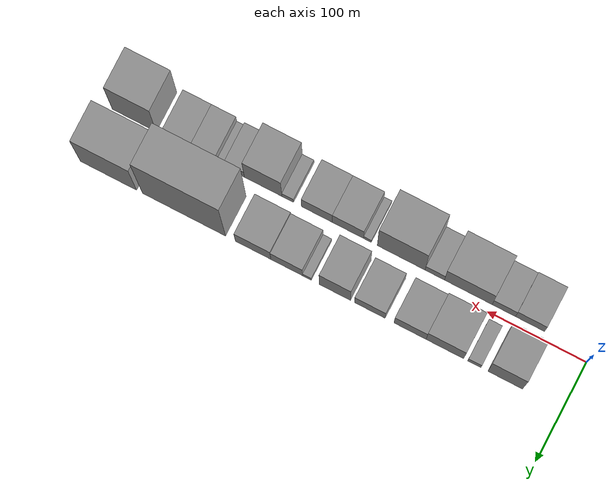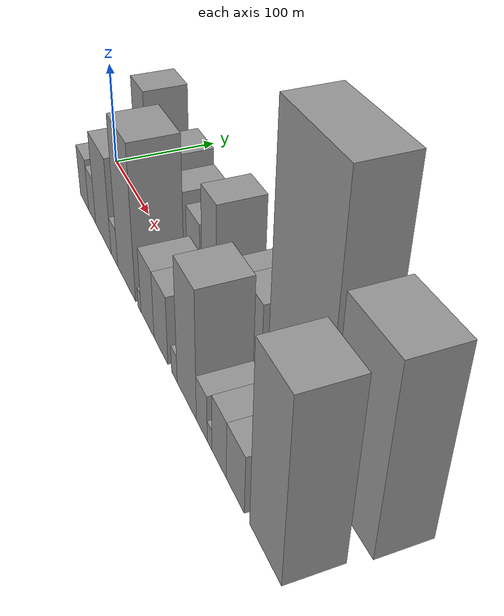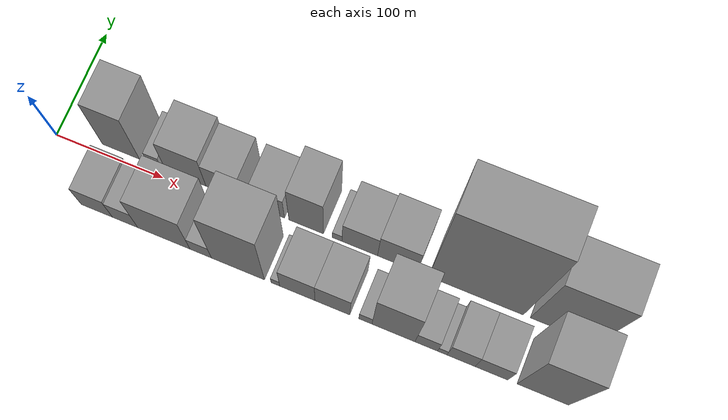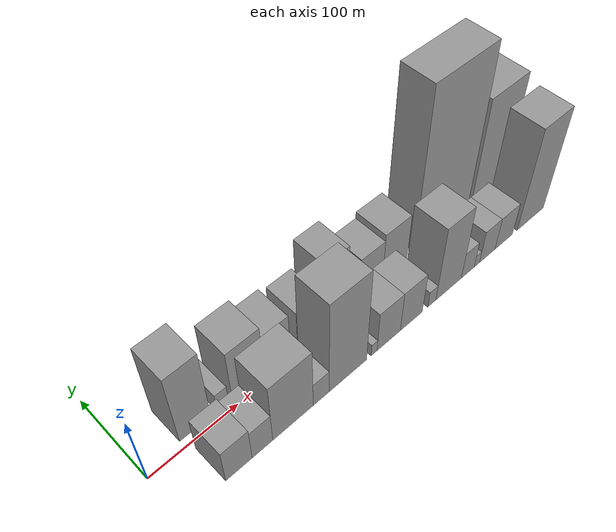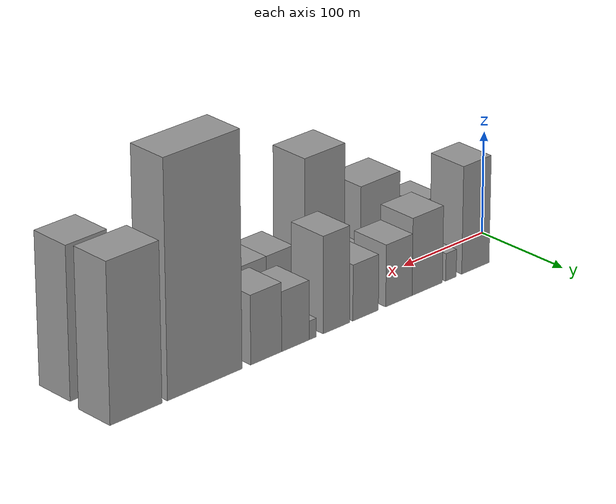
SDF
<sdf version="1.6">
 <world name="default">
  <scene>
   <sky><clouds><speed>12</speed></clouds></sky>
   <ambient>0.4 0.4 0.4 1</ambient>
   <background>0.7 0.7 0.7 1</background>
   <shadows>1</shadows>
  </scene>
  <gravity>0 0 -9.8066</gravity>
  <magnetic_field>6e-06 2.3e-05 -4.2e-05</magnetic_field>
  <physics default="0" name="default_physics" type="ode">
   <ode>
    <solver>
     <type>quick</type>
     <iters>10</iters>
     <sor>1.0</sor>
     <use_dynamic_moi_rescaling>0</use_dynamic_moi_rescaling>
    </solver>
    <constraints>
     <cfm>0</cfm>
     <erp>0.2</erp>
     <contact_max_correcting_vel>100</contact_max_correcting_vel>
     <contact_surface_layer>0.001</contact_surface_layer>
    </constraints>
   </ode>
   <max_step_size>0.004</max_step_size>
   <real_time_factor>1</real_time_factor>
   <real_time_update_rate>250</real_time_update_rate>
  </physics>
  <light name="sun" type="directional">
   <pose>0 0 10 0 0 0</pose>
   <diffuse>0.8 0.8 0.8 1</diffuse>
   <specular>0.2 0.2 0.2 1</specular>
   <attenuation>
    <range>1000</range>
    <constant>0.9</constant>
    <linear>0.01</linear>
    <quadratic>0.001</quadratic>
   </attenuation>
   <direction>-0.5 0.1 -0.9</direction>
  </light>
  <model name="building_1">
   <static>1</static>
   <pose>57.4050 27.5000 0 0.000000 0.000000 1.570796</pose>
   <link name="link">
    <pose>0 0 52.50 0 0 0</pose>
    <collision name="collision"><geometry><box><size>40.0000 34.8099 105.0000</size></box></geometry></collision>
    <visual name="visual">
     <cast_shadows>0</cast_shadows>
     <geometry><box><size>40.0000 34.8099 105.0000</size></box></geometry>
     <material>
      <script>
       <uri>model://grey_wall/materials/scripts</uri>
       <uri>model://grey_wall/materials/textures</uri>
       <name>vrc/grey_wall</name>
      </script>
     </material>
    </visual>
   </link>
  </model>
  <model name="building_2">
   <static>1</static>
   <pose>88.4665 27.5000 0 0.000000 0.000000 1.570796</pose>
   <link name="link">
    <pose>0 0 13.50 0 0 0</pose>
    <collision name="collision"><geometry><box><size>40.0000 13.3131 27.0000</size></box></geometry></collision>
    <visual name="visual">
     <cast_shadows>0</cast_shadows>
     <geometry><box><size>40.0000 13.3131 27.0000</size></box></geometry>
     <material>
      <script>
       <uri>model://grey_wall/materials/scripts</uri>
       <uri>model://grey_wall/materials/textures</uri>
       <name>vrc/grey_wall</name>
      </script>
     </material>
    </visual>
   </link>
  </model>
  <model name="building_3">
   <static>1</static>
   <pose>118.0067 27.5000 0 0.000000 0.000000 1.570796</pose>
   <link name="link">
    <pose>0 0 37.50 0 0 0</pose>
    <collision name="collision"><geometry><box><size>40.0000 37.7672 75.0000</size></box></geometry></collision>
    <visual name="visual">
     <cast_shadows>0</cast_shadows>
     <geometry><box><size>40.0000 37.7672 75.0000</size></box></geometry>
     <material>
      <script>
       <uri>model://grey_wall/materials/scripts</uri>
       <uri>model://grey_wall/materials/textures</uri>
       <name>vrc/grey_wall</name>
      </script>
     </material>
    </visual>
   </link>
  </model>
  <model name="building_4">
   <static>1</static>
   <pose>153.1017 27.5000 0 0.000000 0.000000 1.570796</pose>
   <link name="link">
    <pose>0 0 30.00 0 0 0</pose>
    <collision name="collision"><geometry><box><size>40.0000 32.4228 60.0000</size></box></geometry></collision>
    <visual name="visual">
     <cast_shadows>0</cast_shadows>
     <geometry><box><size>40.0000 32.4228 60.0000</size></box></geometry>
     <material>
      <script>
       <uri>model://grey_wall/materials/scripts</uri>
       <uri>model://grey_wall/materials/textures</uri>
       <name>vrc/grey_wall</name>
      </script>
     </material>
    </visual>
   </link>
  </model>
  <model name="building_5">
   <static>1</static>
   <pose>193.7744 27.5000 0 0.000000 0.000000 1.570796</pose>
   <link name="link">
    <pose>0 0 27.00 0 0 0</pose>
    <collision name="collision"><geometry><box><size>40.0000 30.9227 54.0000</size></box></geometry></collision>
    <visual name="visual">
     <cast_shadows>0</cast_shadows>
     <geometry><box><size>40.0000 30.9227 54.0000</size></box></geometry>
     <material>
      <script>
       <uri>model://grey_wall/materials/scripts</uri>
       <uri>model://grey_wall/materials/textures</uri>
       <name>vrc/grey_wall</name>
      </script>
     </material>
    </visual>
   </link>
  </model>
  <model name="building_6">
   <static>1</static>
   <pose>228.9866 27.5000 0 0.000000 0.000000 1.570796</pose>
   <link name="link">
    <pose>0 0 46.50 0 0 0</pose>
    <collision name="collision"><geometry><box><size>40.0000 31.5016 93.0000</size></box></geometry></collision>
    <visual name="visual">
     <cast_shadows>0</cast_shadows>
     <geometry><box><size>40.0000 31.5016 93.0000</size></box></geometry>
     <material>
      <script>
       <uri>model://grey_wall/materials/scripts</uri>
       <uri>model://grey_wall/materials/textures</uri>
       <name>vrc/grey_wall</name>
      </script>
     </material>
    </visual>
   </link>
  </model>
  <model name="building_7">
   <static>1</static>
   <pose>257.1111 27.5000 0 0.000000 0.000000 1.570796</pose>
   <link name="link">
    <pose>0 0 9.00 0 0 0</pose>
    <collision name="collision"><geometry><box><size>40.0000 8.7476 18.0000</size></box></geometry></collision>
    <visual name="visual">
     <cast_shadows>0</cast_shadows>
     <geometry><box><size>40.0000 8.7476 18.0000</size></box></geometry>
     <material>
      <script>
       <uri>model://grey_wall/materials/scripts</uri>
       <uri>model://grey_wall/materials/textures</uri>
       <name>vrc/grey_wall</name>
      </script>
     </material>
    </visual>
   </link>
  </model>
  <model name="building_8">
   <static>1</static>
   <pose>277.5627 27.5000 0 0.000000 0.000000 1.570796</pose>
   <link name="link">
    <pose>0 0 28.50 0 0 0</pose>
    <collision name="collision"><geometry><box><size>40.0000 32.1554 57.0000</size></box></geometry></collision>
    <visual name="visual">
     <cast_shadows>0</cast_shadows>
     <geometry><box><size>40.0000 32.1554 57.0000</size></box></geometry>
     <material>
      <script>
       <uri>model://grey_wall/materials/scripts</uri>
       <uri>model://grey_wall/materials/textures</uri>
       <name>vrc/grey_wall</name>
      </script>
     </material>
    </visual>
   </link>
  </model>
  <model name="building_9">
   <static>1</static>
   <pose>311.5244 27.5000 0 0.000000 0.000000 1.570796</pose>
   <link name="link">
    <pose>0 0 33.00 0 0 0</pose>
    <collision name="collision"><geometry><box><size>40.0000 35.7680 66.0000</size></box></geometry></collision>
    <visual name="visual">
     <cast_shadows>0</cast_shadows>
     <geometry><box><size>40.0000 35.7680 66.0000</size></box></geometry>
     <material>
      <script>
       <uri>model://grey_wall/materials/scripts</uri>
       <uri>model://grey_wall/materials/textures</uri>
       <name>vrc/grey_wall</name>
      </script>
     </material>
    </visual>
   </link>
  </model>
  <model name="building_10">
   <static>1</static>
   <pose>381.4530 27.5000 0 0.000000 0.000000 1.570796</pose>
   <link name="link">
    <pose>0 0 111.00 0 0 0</pose>
    <collision name="collision"><geometry><box><size>40.0000 84.0892 222.0000</size></box></geometry></collision>
    <visual name="visual">
     <cast_shadows>0</cast_shadows>
     <geometry><box><size>40.0000 84.0892 222.0000</size></box></geometry>
     <material>
      <script>
       <uri>model://grey_wall/materials/scripts</uri>
       <uri>model://grey_wall/materials/textures</uri>
       <name>vrc/grey_wall</name>
      </script>
     </material>
    </visual>
   </link>
  </model>
  <model name="building_11">
   <static>1</static>
   <pose>457.9591 27.5000 0 0.000000 0.000000 1.570796</pose>
   <link name="link">
    <pose>0 0 75.00 0 0 0</pose>
    <collision name="collision"><geometry><box><size>40.0000 56.9230 150.0000</size></box></geometry></collision>
    <visual name="visual">
     <cast_shadows>0</cast_shadows>
     <geometry><box><size>40.0000 56.9230 150.0000</size></box></geometry>
     <material>
      <script>
       <uri>model://grey_wall/materials/scripts</uri>
       <uri>model://grey_wall/materials/textures</uri>
       <name>vrc/grey_wall</name>
      </script>
     </material>
    </visual>
   </link>
  </model>
  <model name="building_12">
   <static>1</static>
   <pose>60.5892 -27.5000 0 0.000000 0.000000 1.570796</pose>
   <link name="link">
    <pose>0 0 25.50 0 0 0</pose>
    <collision name="collision"><geometry><box><size>40.0000 29.1784 51.0000</size></box></geometry></collision>
    <visual name="visual">
     <cast_shadows>0</cast_shadows>
     <geometry><box><size>40.0000 29.1784 51.0000</size></box></geometry>
     <material>
      <script>
       <uri>model://grey_wall/materials/scripts</uri>
       <uri>model://grey_wall/materials/textures</uri>
       <name>vrc/grey_wall</name>
      </script>
     </material>
    </visual>
   </link>
  </model>
  <model name="building_13">
   <static>1</static>
   <pose>86.9274 -27.5000 0 0.000000 0.000000 1.570796</pose>
   <link name="link">
    <pose>0 0 22.50 0 0 0</pose>
    <collision name="collision"><geometry><box><size>40.0000 23.4980 45.0000</size></box></geometry></collision>
    <visual name="visual">
     <cast_shadows>0</cast_shadows>
     <geometry><box><size>40.0000 23.4980 45.0000</size></box></geometry>
     <material>
      <script>
       <uri>model://grey_wall/materials/scripts</uri>
       <uri>model://grey_wall/materials/textures</uri>
       <name>vrc/grey_wall</name>
      </script>
     </material>
    </visual>
   </link>
  </model>
  <model name="building_14">
   <static>1</static>
   <pose>122.7340 -27.5000 0 0.000000 0.000000 1.570796</pose>
   <link name="link">
    <pose>0 0 45.00 0 0 0</pose>
    <collision name="collision"><geometry><box><size>40.0000 48.1151 90.0000</size></box></geometry></collision>
    <visual name="visual">
     <cast_shadows>0</cast_shadows>
     <geometry><box><size>40.0000 48.1151 90.0000</size></box></geometry>
     <material>
      <script>
       <uri>model://grey_wall/materials/scripts</uri>
       <uri>model://grey_wall/materials/textures</uri>
       <name>vrc/grey_wall</name>
      </script>
     </material>
    </visual>
   </link>
  </model>
  <model name="building_15">
   <static>1</static>
   <pose>156.5684 -27.5000 0 0.000000 0.000000 1.570796</pose>
   <link name="link">
    <pose>0 0 18.00 0 0 0</pose>
    <collision name="collision"><geometry><box><size>40.0000 19.5539 36.0000</size></box></geometry></collision>
    <visual name="visual">
     <cast_shadows>0</cast_shadows>
     <geometry><box><size>40.0000 19.5539 36.0000</size></box></geometry>
     <material>
      <script>
       <uri>model://grey_wall/materials/scripts</uri>
       <uri>model://grey_wall/materials/textures</uri>
       <name>vrc/grey_wall</name>
      </script>
     </material>
    </visual>
   </link>
  </model>
  <model name="building_16">
   <static>1</static>
   <pose>190.4565 -27.5000 0 0.000000 0.000000 1.570796</pose>
   <link name="link">
    <pose>0 0 69.00 0 0 0</pose>
    <collision name="collision"><geometry><box><size>40.0000 48.2222 138.0000</size></box></geometry></collision>
    <visual name="visual">
     <cast_shadows>0</cast_shadows>
     <geometry><box><size>40.0000 48.2222 138.0000</size></box></geometry>
     <material>
      <script>
       <uri>model://grey_wall/materials/scripts</uri>
       <uri>model://grey_wall/materials/textures</uri>
       <name>vrc/grey_wall</name>
      </script>
     </material>
    </visual>
   </link>
  </model>
  <model name="building_17">
   <static>1</static>
   <pose>224.4831 -27.5000 0 0.000000 0.000000 1.570796</pose>
   <link name="link">
    <pose>0 0 9.00 0 0 0</pose>
    <collision name="collision"><geometry><box><size>40.0000 7.8309 18.0000</size></box></geometry></collision>
    <visual name="visual">
     <cast_shadows>0</cast_shadows>
     <geometry><box><size>40.0000 7.8309 18.0000</size></box></geometry>
     <material>
      <script>
       <uri>model://grey_wall/materials/scripts</uri>
       <uri>model://grey_wall/materials/textures</uri>
       <name>vrc/grey_wall</name>
      </script>
     </material>
    </visual>
   </link>
  </model>
  <model name="building_18">
   <static>1</static>
   <pose>244.2484 -27.5000 0 0.000000 0.000000 1.570796</pose>
   <link name="link">
    <pose>0 0 30.00 0 0 0</pose>
    <collision name="collision"><geometry><box><size>40.0000 31.6999 60.0000</size></box></geometry></collision>
    <visual name="visual">
     <cast_shadows>0</cast_shadows>
     <geometry><box><size>40.0000 31.6999 60.0000</size></box></geometry>
     <material>
      <script>
       <uri>model://grey_wall/materials/scripts</uri>
       <uri>model://grey_wall/materials/textures</uri>
       <name>vrc/grey_wall</name>
      </script>
     </material>
    </visual>
   </link>
  </model>
  <model name="building_19">
   <static>1</static>
   <pose>275.6434 -27.5000 0 0.000000 0.000000 1.570796</pose>
   <link name="link">
    <pose>0 0 30.00 0 0 0</pose>
    <collision name="collision"><geometry><box><size>40.0000 31.0900 60.0000</size></box></geometry></collision>
    <visual name="visual">
     <cast_shadows>0</cast_shadows>
     <geometry><box><size>40.0000 31.0900 60.0000</size></box></geometry>
     <material>
      <script>
       <uri>model://grey_wall/materials/scripts</uri>
       <uri>model://grey_wall/materials/textures</uri>
       <name>vrc/grey_wall</name>
      </script>
     </material>
    </visual>
   </link>
  </model>
  <model name="building_20">
   <static>1</static>
   <pose>305.0550 -27.5000 0 0.000000 0.000000 1.570796</pose>
   <link name="link">
    <pose>0 0 12.00 0 0 0</pose>
    <collision name="collision"><geometry><box><size>40.0000 11.7334 24.0000</size></box></geometry></collision>
    <visual name="visual">
     <cast_shadows>0</cast_shadows>
     <geometry><box><size>40.0000 11.7334 24.0000</size></box></geometry>
     <material>
      <script>
       <uri>model://grey_wall/materials/scripts</uri>
       <uri>model://grey_wall/materials/textures</uri>
       <name>vrc/grey_wall</name>
      </script>
     </material>
    </visual>
   </link>
  </model>
  <model name="building_21">
   <static>1</static>
   <pose>329.9387 -27.5000 0 0.000000 0.000000 1.570796</pose>
   <link name="link">
    <pose>0 0 54.00 0 0 0</pose>
    <collision name="collision"><geometry><box><size>40.0000 38.0341 108.0000</size></box></geometry></collision>
    <visual name="visual">
     <cast_shadows>0</cast_shadows>
     <geometry><box><size>40.0000 38.0341 108.0000</size></box></geometry>
     <material>
      <script>
       <uri>model://grey_wall/materials/scripts</uri>
       <uri>model://grey_wall/materials/textures</uri>
       <name>vrc/grey_wall</name>
      </script>
     </material>
    </visual>
   </link>
  </model>
  <model name="building_22">
   <static>1</static>
   <pose>358.8997 -27.5000 0 0.000000 0.000000 1.570796</pose>
   <link name="link">
    <pose>0 0 19.50 0 0 0</pose>
    <collision name="collision"><geometry><box><size>40.0000 19.8879 39.0000</size></box></geometry></collision>
    <visual name="visual">
     <cast_shadows>0</cast_shadows>
     <geometry><box><size>40.0000 19.8879 39.0000</size></box></geometry>
     <material>
      <script>
       <uri>model://grey_wall/materials/scripts</uri>
       <uri>model://grey_wall/materials/textures</uri>
       <name>vrc/grey_wall</name>
      </script>
     </material>
    </visual>
   </link>
  </model>
  <model name="building_23">
   <static>1</static>
   <pose>372.9472 -27.5000 0 0.000000 0.000000 1.570796</pose>
   <link name="link">
    <pose>0 0 9.00 0 0 0</pose>
    <collision name="collision"><geometry><box><size>40.0000 8.2070 18.0000</size></box></geometry></collision>
    <visual name="visual">
     <cast_shadows>0</cast_shadows>
     <geometry><box><size>40.0000 8.2070 18.0000</size></box></geometry>
     <material>
      <script>
       <uri>model://grey_wall/materials/scripts</uri>
       <uri>model://grey_wall/materials/textures</uri>
       <name>vrc/grey_wall</name>
      </script>
     </material>
    </visual>
   </link>
  </model>
  <model name="building_24">
   <static>1</static>
   <pose>389.3609 -27.5000 0 0.000000 0.000000 1.570796</pose>
   <link name="link">
    <pose>0 0 24.00 0 0 0</pose>
    <collision name="collision"><geometry><box><size>40.0000 24.6206 48.0000</size></box></geometry></collision>
    <visual name="visual">
     <cast_shadows>0</cast_shadows>
     <geometry><box><size>40.0000 24.6206 48.0000</size></box></geometry>
     <material>
      <script>
       <uri>model://grey_wall/materials/scripts</uri>
       <uri>model://grey_wall/materials/textures</uri>
       <name>vrc/grey_wall</name>
      </script>
     </material>
    </visual>
   </link>
  </model>
  <model name="building_25">
   <static>1</static>
   <pose>415.9757 -27.5000 0 0.000000 0.000000 1.570796</pose>
   <link name="link">
    <pose>0 0 24.00 0 0 0</pose>
    <collision name="collision"><geometry><box><size>40.0000 28.6090 48.0000</size></box></geometry></collision>
    <visual name="visual">
     <cast_shadows>0</cast_shadows>
     <geometry><box><size>40.0000 28.6090 48.0000</size></box></geometry>
     <material>
      <script>
       <uri>model://grey_wall/materials/scripts</uri>
       <uri>model://grey_wall/materials/textures</uri>
       <name>vrc/grey_wall</name>
      </script>
     </material>
    </visual>
   </link>
  </model>
  <model name="building_26">
   <static>1</static>
   <pose>460.5625 -27.5000 0 0.000000 0.000000 1.570796</pose>
   <link name="link">
    <pose>0 0 72.00 0 0 0</pose>
    <collision name="collision"><geometry><box><size>40.0000 44.5646 144.0000</size></box></geometry></collision>
    <visual name="visual">
     <cast_shadows>0</cast_shadows>
     <geometry><box><size>40.0000 44.5646 144.0000</size></box></geometry>
     <material>
      <script>
       <uri>model://grey_wall/materials/scripts</uri>
       <uri>model://grey_wall/materials/textures</uri>
       <name>vrc/grey_wall</name>
      </script>
     </material>
    </visual>
   </link>
  </model>
 </world>
</sdf>
